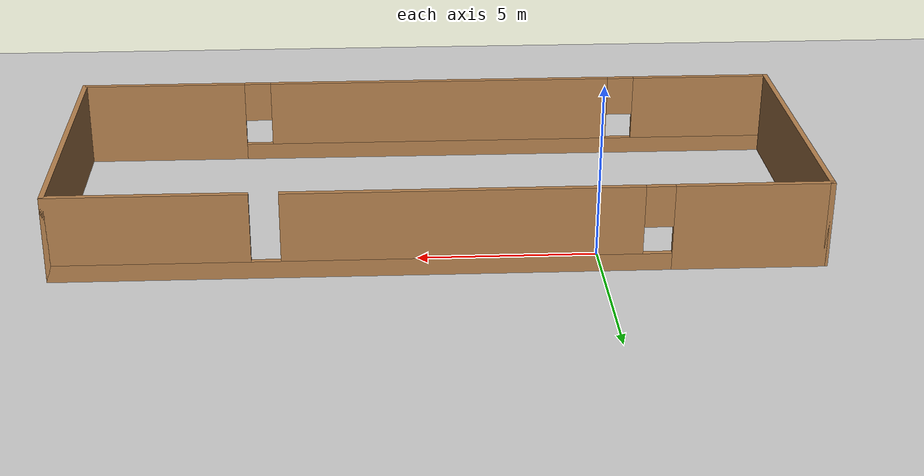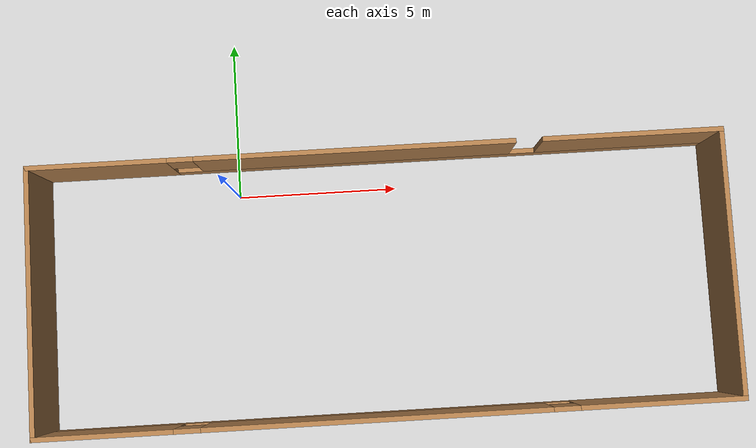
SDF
<sdf version="1.7">
 <world name="default">
  <light name="sun" type="directional">
   <pose>0 0 10 0 -0 0</pose>
   <diffuse>0.8 0.8 0.8 1</diffuse>
   <specular>0.2 0.2 0.2 1</specular>
   <attenuation>
    <range>1000</range>
    <constant>0.9</constant>
    <linear>0.01</linear>
    <quadratic>0.001</quadratic>
   </attenuation>
   <direction>-0.5 0.1 -0.9</direction>
   <spot><inner_angle>0</inner_angle><outer_angle>0</outer_angle><falloff>0</falloff></spot>
  </light>
  <model name="ground_plane">
   <static>1</static>
   <link name="link">
    <collision name="collision">
     <geometry><plane><normal>0 0 1</normal><size>100 100</size></plane></geometry>
     <surface><friction><ode><mu>100</mu><mu2>50</mu2></ode></friction></surface>
    </collision>
    <visual name="visual">
     <cast_shadows>0</cast_shadows>
     <geometry><plane><normal>0 0 1</normal><size>100 100</size></plane></geometry>
     <material>
      <script><uri>file://media/materials/scripts/gazebo.material</uri><name>Gazebo/Grey</name></script>
     </material>
    </visual>
   </link>
  </model>
  <gravity>0 0 -9.8</gravity>
  <magnetic_field>6e-06 2.3e-05 -4.2e-05</magnetic_field>
  <atmosphere type="adiabatic"/>
  <physics type="ode">
   <max_step_size>0.001</max_step_size>
   <real_time_factor>1</real_time_factor>
   <real_time_update_rate>1000</real_time_update_rate>
  </physics>
  <scene><ambient>0.4 0.4 0.4 1</ambient><background>0.7 0.7 0.7 1</background><shadows>1</shadows></scene>
  <spherical_coordinates>
   <surface_model>EARTH_WGS84</surface_model>
   <latitude_deg>0</latitude_deg>
   <longitude_deg>0</longitude_deg>
   <elevation>0</elevation>
   <heading_deg>0</heading_deg>
  </spherical_coordinates>
  <model name="myword">
   <pose>4.39726 -3.11968 0 0 -0 0</pose>
   <link name="Wall_0">
    <pose>-0 4.05 0 0 -0 0</pose>
    <visual name="Wall_0_Visual_0">
     <pose>-8.46264 0 1.25 0 -0 0</pose>
     <geometry><box><size>4.32472 0.15 2.5</size></box></geometry>
     <material>
      <script><uri>file://media/materials/scripts/gazebo.material</uri><name>Gazebo/Wood</name></script>
      <ambient>1 1 1 1</ambient>
     </material>
     <meta><layer>0</layer></meta>
    </visual>
    <collision name="Wall_0_Collision_0">
     <geometry><box><size>4.32472 0.15 2.5</size></box></geometry>
     <pose>-8.46264 0 1.25 0 -0 0</pose>
    </collision>
    <visual name="Wall_0_Visual_1">
     <pose>2.16236 0 0.25 0 -0 0</pose>
     <geometry><box><size>16.9253 0.15 0.5</size></box></geometry>
     <material>
      <script><uri>file://media/materials/scripts/gazebo.material</uri><name>Gazebo/Wood</name></script>
      <ambient>1 1 1 1</ambient>
     </material>
     <meta><layer>0</layer></meta>
    </visual>
    <collision name="Wall_0_Collision_1">
     <geometry><box><size>16.9253 0.15 0.5</size></box></geometry>
     <pose>2.16236 0 0.25 0 -0 0</pose>
    </collision>
    <visual name="Wall_0_Visual_2">
     <pose>-0.592881 0 1.5 0 -0 0</pose>
     <geometry><box><size>9.81481 0.15 2</size></box></geometry>
     <material>
      <script><uri>file://media/materials/scripts/gazebo.material</uri><name>Gazebo/Wood</name></script>
      <ambient>1 1 1 1</ambient>
     </material>
     <meta><layer>0</layer></meta>
    </visual>
    <collision name="Wall_0_Collision_2">
     <geometry><box><size>9.81481 0.15 2</size></box></geometry>
     <pose>-0.592881 0 1.5 0 -0 0</pose>
    </collision>
    <visual name="Wall_0_Visual_3">
     <pose>7.86976 0 1.5 0 -0 0</pose>
     <geometry><box><size>5.51048 0.15 2</size></box></geometry>
     <material>
      <script><uri>file://media/materials/scripts/gazebo.material</uri><name>Gazebo/Wood</name></script>
      <ambient>1 1 1 1</ambient>
     </material>
     <meta><layer>0</layer></meta>
    </visual>
    <collision name="Wall_0_Collision_3">
     <geometry><box><size>5.51048 0.15 2</size></box></geometry>
     <pose>7.86976 0 1.5 0 -0 0</pose>
    </collision>
    <visual name="Wall_0_Visual_4">
     <pose>-5.90029 0 1.9 0 -0 0</pose>
     <geometry><box><size>0.8 0.15 1.2</size></box></geometry>
     <material>
      <script><uri>file://media/materials/scripts/gazebo.material</uri><name>Gazebo/Wood</name></script>
      <ambient>1 1 1 1</ambient>
     </material>
     <meta><layer>0</layer></meta>
    </visual>
    <collision name="Wall_0_Collision_4">
     <geometry><box><size>0.8 0.15 1.2</size></box></geometry>
     <pose>-5.90029 0 1.9 0 -0 0</pose>
    </collision>
    <visual name="Wall_0_Visual_5">
     <pose>4.31452 0 1.9 0 -0 0</pose>
     <geometry><box><size>0 0.15 1.2</size></box></geometry>
     <material>
      <script><uri>file://media/materials/scripts/gazebo.material</uri><name>Gazebo/Wood</name></script>
      <ambient>1 1 1 1</ambient>
     </material>
     <meta><layer>0</layer></meta>
    </visual>
    <collision name="Wall_0_Collision_5">
     <geometry><box><size>0 0.15 1.2</size></box></geometry>
     <pose>4.31452 0 1.9 0 -0 0</pose>
    </collision>
   </link>
   <link name="Wall_1">
    <collision name="Wall_1_Collision">
     <geometry><box><size>8.25 0.15 2.5</size></box></geometry>
     <pose>0 0 1.25 0 -0 0</pose>
    </collision>
    <visual name="Wall_1_Visual">
     <pose>0 0 1.25 0 -0 0</pose>
     <geometry><box><size>8.25 0.15 2.5</size></box></geometry>
     <material>
      <script><uri>file://media/materials/scripts/gazebo.material</uri><name>Gazebo/Wood</name></script>
      <ambient>1 1 1 1</ambient>
     </material>
     <meta><layer>0</layer></meta>
    </visual>
    <pose>10.55 0 0 0 -0 -1.5708</pose>
   </link>
   <link name="Wall_2">
    <pose>-0 -4.05 0 0 -0 3.14159</pose>
    <visual name="Wall_2_Visual_0">
     <pose>-8.14507 0 1.25 0 -0 0</pose>
     <geometry><box><size>4.95985 0.15 2.5</size></box></geometry>
     <material>
      <script><uri>file://media/materials/scripts/gazebo.material</uri><name>Gazebo/Wood</name></script>
      <ambient>1 1 1 1</ambient>
     </material>
     <meta><layer>0</layer></meta>
    </visual>
    <collision name="Wall_2_Collision_0">
     <geometry><box><size>4.95985 0.15 2.5</size></box></geometry>
     <pose>-8.14507 0 1.25 0 -0 0</pose>
    </collision>
    <visual name="Wall_2_Visual_1">
     <pose>2.47993 0 0.25 0 -0 0</pose>
     <geometry><box><size>16.2901 0.15 0.5</size></box></geometry>
     <material>
      <script><uri>file://media/materials/scripts/gazebo.material</uri><name>Gazebo/Wood</name></script>
      <ambient>1 1 1 1</ambient>
     </material>
     <meta><layer>0</layer></meta>
    </visual>
    <collision name="Wall_2_Collision_1">
     <geometry><box><size>16.2901 0.15 0.5</size></box></geometry>
     <pose>2.47993 0 0.25 0 -0 0</pose>
    </collision>
    <visual name="Wall_2_Visual_2">
     <pose>0.363454 0 1.5 0 -0 0</pose>
     <geometry><box><size>10.4572 0.15 2</size></box></geometry>
     <material>
      <script><uri>file://media/materials/scripts/gazebo.material</uri><name>Gazebo/Wood</name></script>
      <ambient>1 1 1 1</ambient>
     </material>
     <meta><layer>0</layer></meta>
    </visual>
    <collision name="Wall_2_Collision_2">
     <geometry><box><size>10.4572 0.15 2</size></box></geometry>
     <pose>0.363454 0 1.5 0 -0 0</pose>
    </collision>
    <visual name="Wall_2_Visual_3">
     <pose>8.50853 0 1.5 0 -0 0</pose>
     <geometry><box><size>4.23294 0.15 2</size></box></geometry>
     <material>
      <script><uri>file://media/materials/scripts/gazebo.material</uri><name>Gazebo/Wood</name></script>
      <ambient>1 1 1 1</ambient>
     </material>
     <meta><layer>0</layer></meta>
    </visual>
    <collision name="Wall_2_Collision_3">
     <geometry><box><size>4.23294 0.15 2</size></box></geometry>
     <pose>8.50853 0 1.5 0 -0 0</pose>
    </collision>
    <visual name="Wall_2_Visual_4">
     <pose>-5.26515 0 1.9 0 -0 0</pose>
     <geometry><box><size>0.8 0.15 1.2</size></box></geometry>
     <material>
      <script><uri>file://media/materials/scripts/gazebo.material</uri><name>Gazebo/Wood</name></script>
      <ambient>1 1 1 1</ambient>
     </material>
     <meta><layer>0</layer></meta>
    </visual>
    <collision name="Wall_2_Collision_4">
     <geometry><box><size>0.8 0.15 1.2</size></box></geometry>
     <pose>-5.26515 0 1.9 0 -0 0</pose>
    </collision>
    <visual name="Wall_2_Visual_5">
     <pose>5.99206 0 1.9 0 -0 0</pose>
     <geometry><box><size>0.8 0.15 1.2</size></box></geometry>
     <material>
      <script><uri>file://media/materials/scripts/gazebo.material</uri><name>Gazebo/Wood</name></script>
      <ambient>1 1 1 1</ambient>
     </material>
     <meta><layer>0</layer></meta>
    </visual>
    <collision name="Wall_2_Collision_5">
     <geometry><box><size>0.8 0.15 1.2</size></box></geometry>
     <pose>5.99206 0 1.9 0 -0 0</pose>
    </collision>
   </link>
   <link name="Wall_3">
    <collision name="Wall_3_Collision">
     <geometry><box><size>8.25 0.15 2.5</size></box></geometry>
     <pose>0 0 1.25 0 -0 0</pose>
    </collision>
    <visual name="Wall_3_Visual">
     <pose>0 0 1.25 0 -0 0</pose>
     <geometry><box><size>8.25 0.15 2.5</size></box></geometry>
     <material>
      <script><uri>file://media/materials/scripts/gazebo.material</uri><name>Gazebo/Wood</name></script>
      <ambient>1 1 1 1</ambient>
     </material>
     <meta><layer>0</layer></meta>
    </visual>
    <pose>-10.55 0 0 0 -0 1.5708</pose>
   </link>
   <static>1</static>
  </model>
 </world>
</sdf>
